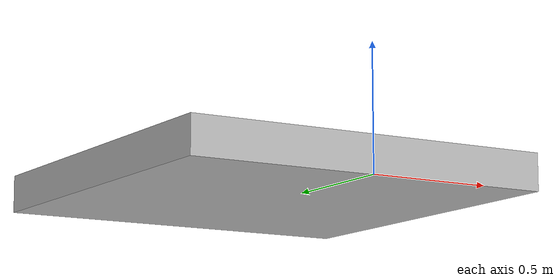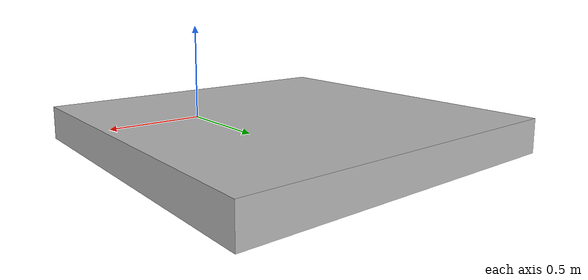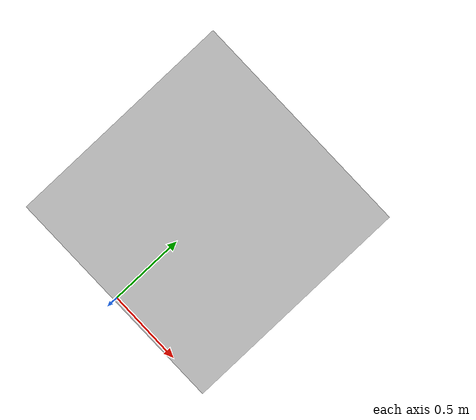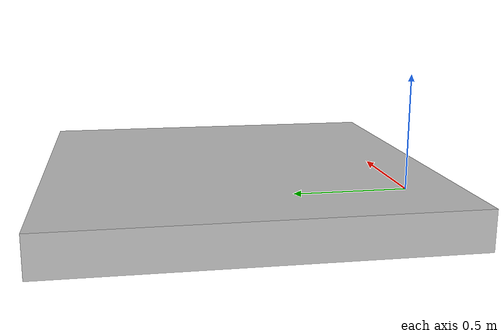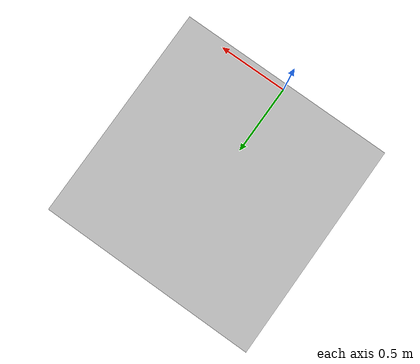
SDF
<?xml version="1.0" ?>
<sdf version="1.6">
  <model name="walkway_metal_straight">
    <static>true</static>
    <link name="link">
      <collision name="collision">
        <pose>0 0.762 0.076075 0 0 0</pose>
        <geometry>
          <box>
            <size>1.524 1.524 0.15215</size>
          </box>
        </geometry>
      </collision>

      <visual name="visual">
         <geometry>
           <mesh>
             <scale>0.001 0.001 0.001</scale>
             <uri>model://walkway_metal_straight/meshes/mesh.obj</uri>
           </mesh>
         </geometry>
       </visual>
    </link>
  </model>
</sdf>
